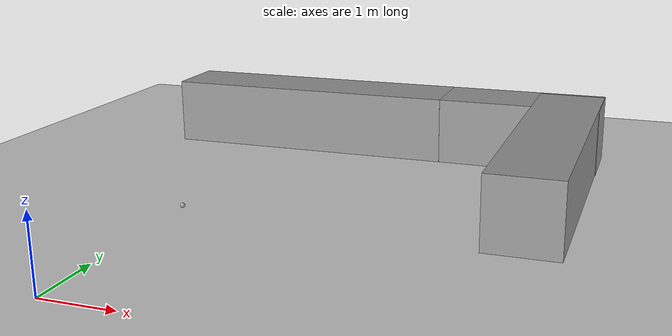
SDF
<sdf version="1.6">
 <world name="default">
  <model name="ground_plane">
   <static>1</static>
   <link name="link">
    <collision name="collision">
     <geometry><plane><normal>0 0 1</normal><size>100 100</size></plane></geometry>
     <surface><friction><ode><mu>100</mu><mu2>50</mu2></ode></friction></surface>
    </collision>
    <visual name="visual">
     <cast_shadows>0</cast_shadows>
     <geometry><plane><normal>0 0 1</normal><size>100 100</size></plane></geometry>
     <material>
      <script><uri>file://media/materials/scripts/gazebo.material</uri><name>Gazebo/Grey</name></script>
     </material>
    </visual>
   </link>
  </model>
  <model name="unit_box_0_clone_0_0_clone_clone_0_clone_clone_clone_0_clone_clone_0">
   <link name="link">
    <inertial>
     <mass>1</mass>
     <inertia>
      <ixx>0.166667</ixx>
      <ixy>0</ixy>
      <ixz>0</ixz>
      <iyy>0.166667</iyy>
      <iyz>0</iyz>
      <izz>0.166667</izz>
     </inertia>
    </inertial>
    <visual name="visual">
     <geometry><box><size>1 4.48154 1</size></box></geometry>
     <material>
      <script><name>Gazebo/Grey</name><uri>file://media/materials/scripts/gazebo.material</uri></script>
      <ambient>0.3 0.3 0.3 1</ambient>
      <diffuse>0.7 0.7 0.7 1</diffuse>
      <specular>0.01 0.01 0.01 1</specular>
      <emissive>0 0 0 1</emissive>
     </material>
    </visual>
    <collision name="collision">
     <geometry><box><size>1 4.48154 1</size></box></geometry>
     <surface>
      <friction>
       <ode><mu>1</mu><mu2>1</mu2><fdir1>0 0 0</fdir1><slip1>0</slip1><slip2>0</slip2></ode>
       <torsional>
        <coefficient>1</coefficient>
        <patch_radius>0</patch_radius>
        <surface_radius>0</surface_radius>
        <use_patch_radius>1</use_patch_radius>
        <ode><slip>0</slip></ode>
       </torsional>
      </friction>
      <bounce><restitution_coefficient>0</restitution_coefficient><threshold>1e+06</threshold></bounce>
      <contact>
       <collide_without_contact>0</collide_without_contact>
       <collide_without_contact_bitmask>1</collide_without_contact_bitmask>
       <collide_bitmask>1</collide_bitmask>
       <ode>
        <soft_cfm>0</soft_cfm>
        <soft_erp>0.2</soft_erp>
        <kp>1e+13</kp>
        <kd>1</kd>
        <max_vel>0.01</max_vel>
        <min_depth>0</min_depth>
       </ode>
       <bullet>
        <split_impulse>1</split_impulse>
        <split_impulse_penetration_threshold>-0.01</split_impulse_penetration_threshold>
        <soft_cfm>0</soft_cfm>
        <soft_erp>0.2</soft_erp>
        <kp>1e+13</kp>
        <kd>1</kd>
       </bullet>
      </contact>
     </surface>
    </collision>
   </link>
   <static>1</static>
   <pose>4.68506 5.01169 0.49975 -3.14102 -0 0.006143</pose>
  </model>
  <model name="frc2016_ball_clone_1">
   <pose>0.026123 3.0866 0.033057 0 -0 0</pose>
   <link name="link">
    <inertial>
     <mass>0.213</mass>
     <inertia>
      <ixx>0.00322667</ixx>
      <ixy>0</ixy>
      <ixz>0</ixz>
      <iyy>0.00322667</iyy>
      <iyz>0</iyz>
      <izz>0.00322667</izz>
     </inertia>
    </inertial>
    <visual name="visual"><geometry><sphere><radius>0.0332087</radius></sphere></geometry></visual>
    <collision name="collision">
     <geometry><sphere><radius>0.0332087</radius></sphere></geometry>
     <surface>
      <bounce><restitution_coefficient>0.15937</restitution_coefficient><threshold>0</threshold></bounce>
      <contact><ode><max_vel>100</max_vel><min_depth>0.001</min_depth></ode></contact>
     </surface>
    </collision>
   </link>
  </model>
  <model name="unit_box_0_clone_0_0_clone_clone_0_clone_clone_clone_0_clone">
   <link name="link">
    <inertial>
     <mass>1</mass>
     <inertia>
      <ixx>0.166667</ixx>
      <ixy>0</ixy>
      <ixz>0</ixz>
      <iyy>0.166667</iyy>
      <iyz>0</iyz>
      <izz>0.166667</izz>
     </inertia>
    </inertial>
    <visual name="visual">
     <geometry><box><size>1 4.48154 1</size></box></geometry>
     <material>
      <script><name>Gazebo/Grey</name><uri>file://media/materials/scripts/gazebo.material</uri></script>
      <ambient>0.3 0.3 0.3 1</ambient>
      <diffuse>0.7 0.7 0.7 1</diffuse>
      <specular>0.01 0.01 0.01 1</specular>
      <emissive>0 0 0 1</emissive>
     </material>
    </visual>
    <collision name="collision">
     <geometry><box><size>1 4.48154 1</size></box></geometry>
     <surface>
      <friction>
       <ode><mu>1</mu><mu2>1</mu2><fdir1>0 0 0</fdir1><slip1>0</slip1><slip2>0</slip2></ode>
       <torsional>
        <coefficient>1</coefficient>
        <patch_radius>0</patch_radius>
        <surface_radius>0</surface_radius>
        <use_patch_radius>1</use_patch_radius>
        <ode><slip>0</slip></ode>
       </torsional>
      </friction>
      <bounce><restitution_coefficient>0</restitution_coefficient><threshold>1e+06</threshold></bounce>
      <contact>
       <collide_without_contact>0</collide_without_contact>
       <collide_without_contact_bitmask>1</collide_without_contact_bitmask>
       <collide_bitmask>1</collide_bitmask>
       <ode>
        <soft_cfm>0</soft_cfm>
        <soft_erp>0.2</soft_erp>
        <kp>1e+13</kp>
        <kd>1</kd>
        <max_vel>0.01</max_vel>
        <min_depth>0</min_depth>
       </ode>
       <bullet>
        <split_impulse>1</split_impulse>
        <split_impulse_penetration_threshold>-0.01</split_impulse_penetration_threshold>
        <soft_cfm>0</soft_cfm>
        <soft_erp>0.2</soft_erp>
        <kp>1e+13</kp>
        <kd>1</kd>
       </bullet>
      </contact>
     </surface>
    </collision>
   </link>
   <static>1</static>
   <pose>0.513644 6.77118 0.499757 3.14159 -0.000573 1.58078</pose>
  </model>
  <model name="unit_box_0_clone_0_0_clone_clone_0_clone_clone_clone_0_clone_clone">
   <link name="link">
    <inertial>
     <mass>1</mass>
     <inertia>
      <ixx>0.166667</ixx>
      <ixy>0</ixy>
      <ixz>0</ixz>
      <iyy>0.166667</iyy>
      <iyz>0</iyz>
      <izz>0.166667</izz>
     </inertia>
    </inertial>
    <visual name="visual">
     <geometry><box><size>1 4.48154 1</size></box></geometry>
     <material>
      <script><name>Gazebo/Grey</name><uri>file://media/materials/scripts/gazebo.material</uri></script>
      <ambient>0.3 0.3 0.3 1</ambient>
      <diffuse>0.7 0.7 0.7 1</diffuse>
      <specular>0.01 0.01 0.01 1</specular>
      <emissive>0 0 0 1</emissive>
     </material>
    </visual>
    <collision name="collision">
     <geometry><box><size>1 4.48154 1</size></box></geometry>
     <surface>
      <friction>
       <ode><mu>1</mu><mu2>1</mu2><fdir1>0 0 0</fdir1><slip1>0</slip1><slip2>0</slip2></ode>
       <torsional>
        <coefficient>1</coefficient>
        <patch_radius>0</patch_radius>
        <surface_radius>0</surface_radius>
        <use_patch_radius>1</use_patch_radius>
        <ode><slip>0</slip></ode>
       </torsional>
      </friction>
      <bounce><restitution_coefficient>0</restitution_coefficient><threshold>1e+06</threshold></bounce>
      <contact>
       <collide_without_contact>0</collide_without_contact>
       <collide_without_contact_bitmask>1</collide_without_contact_bitmask>
       <collide_bitmask>1</collide_bitmask>
       <ode>
        <soft_cfm>0</soft_cfm>
        <soft_erp>0.2</soft_erp>
        <kp>1e+13</kp>
        <kd>1</kd>
        <max_vel>0.01</max_vel>
        <min_depth>0</min_depth>
       </ode>
       <bullet>
        <split_impulse>1</split_impulse>
        <split_impulse_penetration_threshold>-0.01</split_impulse_penetration_threshold>
        <soft_cfm>0</soft_cfm>
        <soft_erp>0.2</soft_erp>
        <kp>1e+13</kp>
        <kd>1</kd>
       </bullet>
      </contact>
     </surface>
    </collision>
   </link>
   <static>1</static>
   <pose>2.93947 6.79686 0.499757 3.14159 -0.000573 1.58078</pose>
  </model>
 </world>
</sdf>
